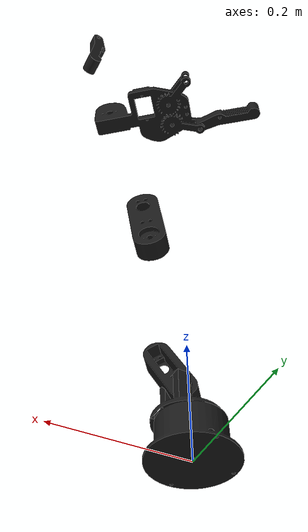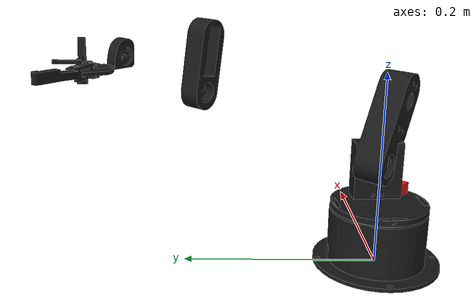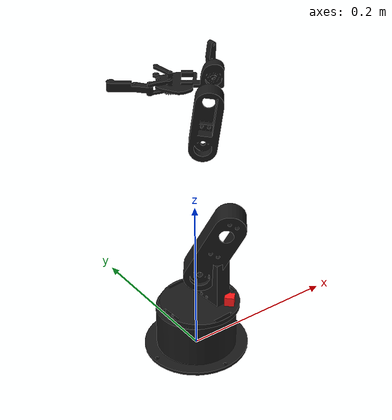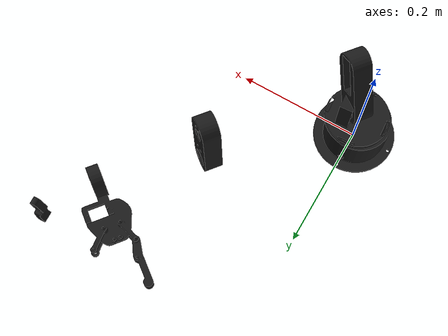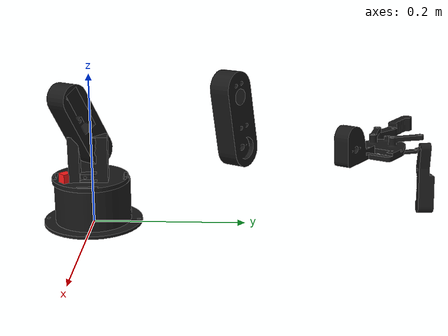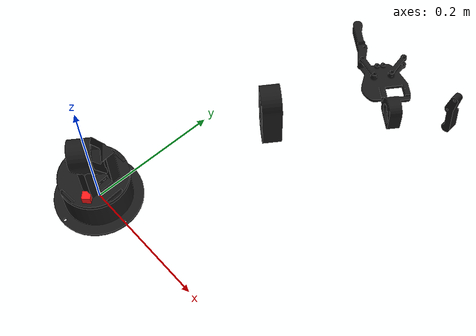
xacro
<?xml version="1.0" encoding="utf-8"?>
<robot
  name="urdf_remade">

  <link name="world" />

  <joint name="fixed_base" type="fixed">
        <parent link="world" />
        <child link="base_link" />
    </joint>

  <link
    name="base_link">
    <inertial>
      <origin
        xyz="-0.00036123 -0.00042605 0.022628"
        rpy="0 0 0" />
      <mass
        value="0.18873" />
      <inertia
        ixx="0.00025902"
        ixy="0.00017171"
        ixz="-0.00013068"
        iyy="0.00025783"
        iyz="0.00087758"
        izz="0.00039006" />
    </inertial>
    <visual>
      <origin
        xyz="0 0 0"
        rpy="0 0 0" />
      <geometry>
        <mesh
          filename="package://manipulator_description/meshes/base_link.STL" />
      </geometry>
      <material
        name="">
        <color
          rgba="0.098039 0.098039 0.098039 1" />
      </material>
    </visual>
    <collision>
      <origin
        xyz="0 0 0"
        rpy="0 0 0" />
      <geometry>
        <mesh
          filename="package://manipulator_description/meshes/base_link.STL" />
      </geometry>
    </collision>
  </link>
  <link
    name="mancal_link">
    <inertial>
      <origin
        xyz="0.0082382 -0.0063516 0.012328"
        rpy="0 0 0" />
      <mass
        value="0.0822" />
      <inertia
        ixx="0.00071159"
        ixy="-0.00024189"
        ixz="-0.00087636"
        iyy="0.00069887"
        iyz="0.00067566"
        izz="0.00070545" />
    </inertial>
    <visual>
      <origin
        xyz="0 0 0"
        rpy="0 0 0" />
      <geometry>
        <mesh
          filename="package://manipulator_description/meshes/mancal_link.STL" />
      </geometry>
      <material
        name="">
        <color
          rgba="0.098039 0.098039 0.098039 1" />
      </material>
    </visual>
    <collision>
      <origin
        xyz="0 0 0"
        rpy="0 0 0" />
      <geometry>
        <mesh
          filename="package://manipulator_description/meshes/mancal_link.STL" />
      </geometry>
    </collision>
  </link>
  <joint
    name="joint_base_mancal"
    type="revolute">
    <origin
      xyz="0.0017893 -0.0022034 0.065"
      rpy="0 0 -3.1273" />
    <parent
      link="base_link" />
    <child
      link="mancal_link" />
    <axis
      xyz="0 0 -1" />
    <limit
      lower="0"
      upper="3.14"
      effort="200"
      velocity="2" />
  </joint>

  <link
    name="camera">
    <visual>
      <geometry>
        <box size= "0.012 0.012 0.012" />
      </geometry>
      <material
        name="">
        <color
          rgba="1.0 0.098039 0.098039 1" />
      </material>
    </visual>
  </link>

  <joint name="fixed_camera" type="fixed">
      <origin
      xyz="0.03 -0.03 0.071"
      rpy="-1.57 0 -0.785" />
      <parent link="base_link" />
      <child link="camera" />
    </joint>

  <link
    name="link_1">
    <inertial>
      <origin
        xyz="-0.12225 0.002316 0.023263"
        rpy="0 0 0" />
      <mass
        value="0.37066" />
      <inertia
        ixx="0.00017655"
        ixy="0.00014663"
        ixz="0.00036049"
        iyy="0.0021231"
        iyz="-0.00027903"
        izz="0.0020023" />
    </inertial>
    <visual>
      <origin
        xyz="0 0 0"
        rpy="0 0 0" />
      <geometry>
        <mesh
          filename="package://manipulator_description/meshes/link_1.STL" />
      </geometry>
      <material
        name="">
        <color
          rgba="0.098039 0.098039 0.098039 1" />
      </material>
    </visual>
    <collision>
      <origin
        xyz="0 0 0"
        rpy="0 0 0" />
      <geometry>
        <mesh
          filename="package://manipulator_description/meshes/link_1.STL" />
      </geometry>
    </collision>
  </link>
  <joint
    name="joint_mancal_link1"
    type="revolute">
    <origin
      xyz="-0.0018347 0.0014146 0.0398"
      rpy="0 0 0.914" />
    <parent
      link="mancal_link" />
    <child
      link="link_1" />
    <axis
      xyz="0 1 0" />
    <limit
      lower="-0.08"
      upper="2.8"
      effort="200"
      velocity="2" />
  </joint>
  <link
    name="link_2">
    <inertial>
      <origin
        xyz="-0.078673 -0.023987 0.014926"
        rpy="0 0 0" />
      <mass
        value="0.20121" />
      <inertia
        ixx="7.6875E-05"
        ixy="-0.00018666"
        ixz="0.00097421"
        iyy="0.00062739"
        iyz="0.00035413"
        izz="0.0005719" />
    </inertial>
    <visual>
      <origin
        xyz="0 0 0"
        rpy="0 0 0" />
      <geometry>
        <mesh
          filename="package://manipulator_description/meshes/link_2.STL" />
      </geometry>
      <material
        name="">
        <color
          rgba="0.098039 0.098039 0.098039 1" />
      </material>
    </visual>
    <collision>
      <origin
        xyz="0 0 0"
        rpy="0 0 0" />
      <geometry>
        <mesh
          filename="package://manipulator_description/meshes/link_2.STL" />
      </geometry>
    </collision>
  </link>
  <joint
    name="joint_link1_link2"
    type="revolute">
    <origin
      xyz="-0.24449 0 0.046524"
      rpy="0 0 0" />
    <parent
      link="link_1" />
    <child
      link="link_2" />
    <axis
      xyz="0 1 0" />
    <limit
      lower="-1.39"
      upper="1.39"
      effort="200"
      velocity="2" />
  </joint>
  <link
    name="link_3">
    <inertial>
      <origin
        xyz="-0.043002 -0.0092993 0.012483"
        rpy="0 0 0" />
      <mass
        value="0.1114" />
      <inertia
        ixx="4.6736E-05"
        ixy="-0.00031676"
        ixz="0.00024917"
        iyy="0.00013144"
        iyz="0.00010543"
        izz="0.00010147" />
    </inertial>
    <visual>
      <origin
        xyz="0 0 0"
        rpy="0 0 0" />
      <geometry>
        <mesh
          filename="package://manipulator_description/meshes/link_3.STL" />
      </geometry>
      <material
        name="">
        <color
          rgba="0.098039 0.098039 0.098039 1" />
      </material>
    </visual>
    <collision>
      <origin
        xyz="0 0 0"
        rpy="0 0 0" />
      <geometry>
        <mesh
          filename="package://manipulator_description/meshes/link_3.STL" />
      </geometry>
    </collision>
  </link>
  <joint
    name="joint_link2_link3"
    type="revolute">
    <origin
      xyz="-0.15734 0.013 0.02985"
      rpy="0 0 0" />
    <parent
      link="link_2" />
    <child
      link="link_3" />
    <axis
      xyz="0 -1 0" />
    <limit
      lower="-1.57"
      upper="1.57"
      effort="200"
      velocity="2" />
  </joint>
  <link
    name="gripper">
    <inertial>
      <origin
        xyz="-0.020033 0.0039871 0.010471"
        rpy="0 0 0" />
      <mass
        value="0.014246" />
      <inertia
        ixx="0.00045598"
        ixy="0.00068889"
        ixz="0.00035533"
        iyy="0.00088054"
        iyz="-0.00094032"
        izz="0.00050149" />
    </inertial>
    <visual>
      <origin
        xyz="0 0 0"
        rpy="0 0 0" />
      <geometry>
        <mesh
          filename="package://manipulator_description/meshes/gripper.STL" />
      </geometry>
      <material
        name="">
        <color
          rgba="0.098039 0.098039 0.098039 1" />
      </material>
    </visual>
    <collision>
      <origin
        xyz="0 0 0"
        rpy="0 0 0" />
      <geometry>
        <mesh
          filename="package://manipulator_description/meshes/gripper.STL" />
      </geometry>
    </collision>
  </link>
  <joint
    name="joint_link3_gripper"
    type="revolute">
    <origin
      xyz="-0.079874 -0.010002 0.014725"
      rpy="1.5708 0 -0.914" />
    <parent
      link="link_3" />
    <child
      link="gripper" />
    <axis
      xyz="0.17293 0.95905 -0.2243" />
    <limit
      lower="-0.35"
      upper="0.35"
      effort="200"
      velocity="2" />
  </joint>

  <link name="ee_center" />

   <joint
    name="joint_gripper_ee_center"
    type="fixed">
    <origin xyz="-0.06 0 0.03" rpy="0 0 0" />
    <parent link="gripper" />
    <child link="ee_center" />
  </joint>
</robot>
